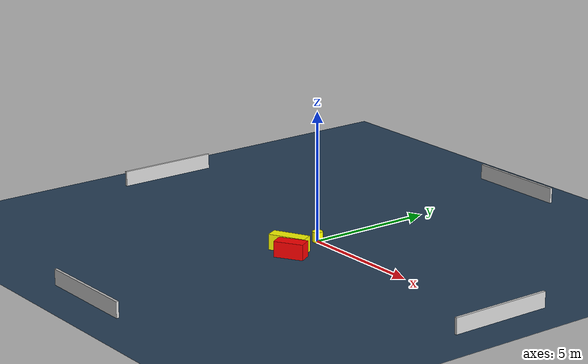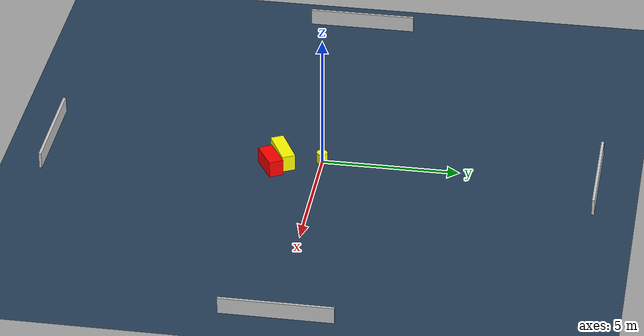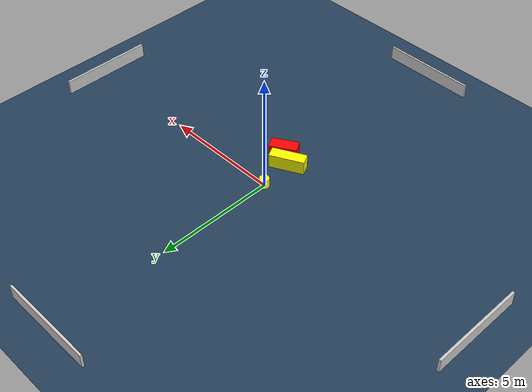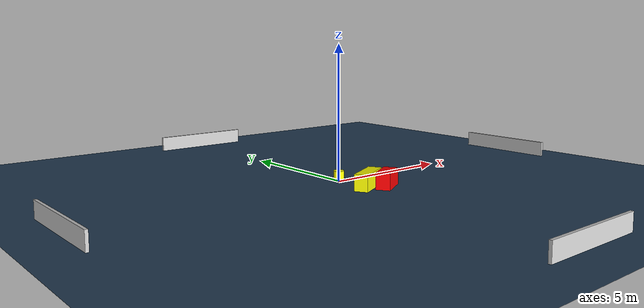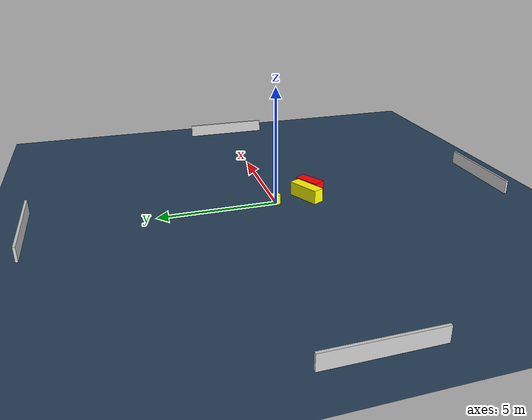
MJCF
<?xml version="1.0" ?>
<mujoco model="generated_environment">
  <option timestep="0.01" integrator="RK4" cone="elliptic"/>
  <default>
    <geom density="1"/>
  </default>
  <asset>
    <texture builtin="gradient" height="3072" name="skybox" rgb1="0.3 0.5 0.7" rgb2="0 0 0" type="skybox" width="512"/>
    <texture builtin="checker" height="300" name="groundplane" rgb1="0.2 0.3 0.4" rgb2="0.1 0.2 0.3" type="2d" width="300"/>
    <material name="groundplane" reflectance="0.2" texrepeat="5 5" texture="groundplane"/>
  </asset>
  <worldbody>
    <light dir="0 0 -1" directional="true" pos="0 0 1.5"/>
    <geom condim="3" friction="0.5 0.005 0.001" material="groundplane" name="floor" pos="0 0 0" size="0 0 0.05" type="plane"/>
    <body name="walls">
      <geom name="wall_1" condim="4" pos="-10.0 0.0 0.3" rgba="0.800000011920929 0.800000011920929 0.800000011920929 1.0" size="0.05 2.0 0.3" type="box"/>
      <geom name="wall_2" condim="4" pos="10.0 0.0 0.3" rgba="0.800000011920929 0.800000011920929 0.800000011920929 1.0" size="0.05 2.0 0.3" type="box"/>
      <geom name="wall_3" condim="4" pos="0.0 -10.0 0.3" rgba="0.800000011920929 0.800000011920929 0.800000011920929 1.0" size="2.0 0.05 0.3" type="box"/>
      <geom name="wall_4" condim="4" pos="0.0 10.0 0.3" rgba="0.800000011920929 0.800000011920929 0.800000011920929 1.0" size="2.0 0.05 0.3" type="box"/>
    </body>
    <body name="robot">
      <joint name="joint_x" type="slide" pos="0 0 0" axis="1 0 0"/>
      <joint name="joint_y" type="slide" pos="0 0 0" axis="0 1 0"/>
      <geom name="robot" type="cylinder" pos="0.0 0.0 0.2" size="0.2 0.2 0.0" mass="5.0" friction="1.0 0.005 0.0001" condim="4" rgba="1.0 1.0 0.0 1.0"/>
    </body>
    <body name="obstacle_1_movable">
      <geom name="obstacle_1_movable" condim="4" pos="0.1402486927481726 -1.4209213162910774 0.3" euler="0 0 116.91028502146207" friction="0.0 0.005 0.001" rgba="1.0 1.0 0.0 1.0" size="0.24576286124971775 0.7255200706924525 0.3" type="box" mass="0.1"/>
      <joint type="free"/>
    </body>
    <body name="obstacle_2_static">
      <geom name="obstacle_2_static" condim="4" pos="0.7109731435117219 -1.7752515474946702 0.3" euler="0 0 120.86709080128931" friction="0.0 0.005 0.001" rgba="1.0 0.0 0.0 1.0" size="0.26457222283557347 0.5700999676833323 0.3" type="box"/>
    </body>
  </worldbody>
  <actuator>
    <motor name="actuator_x" joint="joint_x" gear="1" ctrlrange="-1 1"/>
    <motor name="actuator_y" joint="joint_y" gear="1" ctrlrange="-1 1"/>
  </actuator>
</mujoco>
